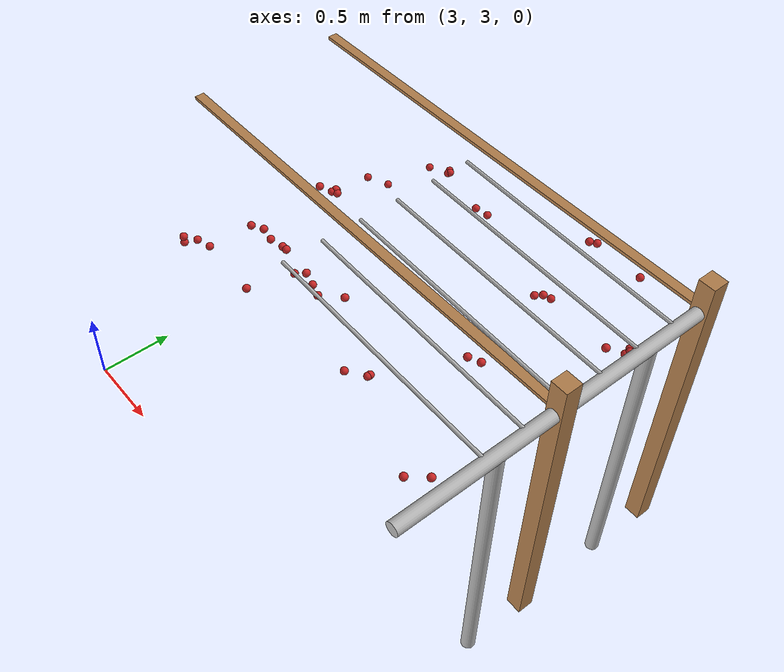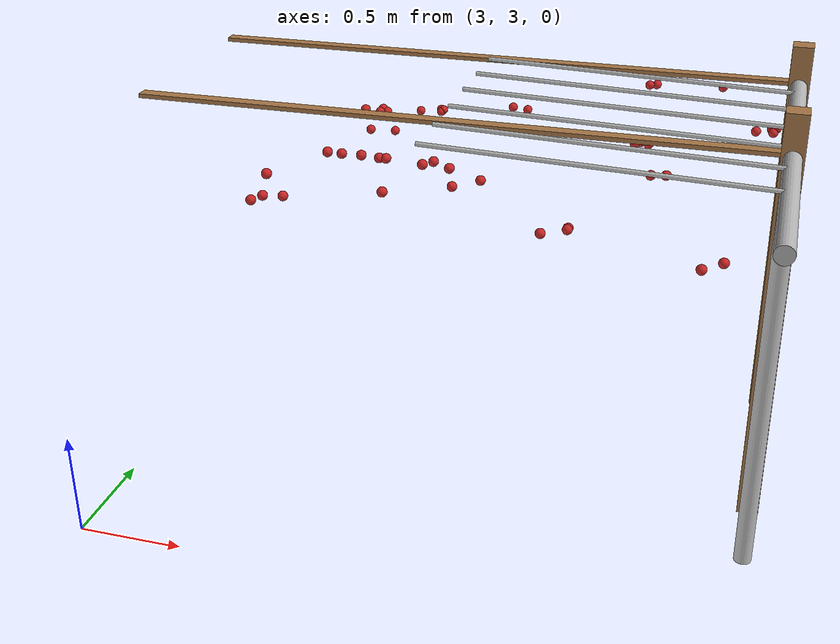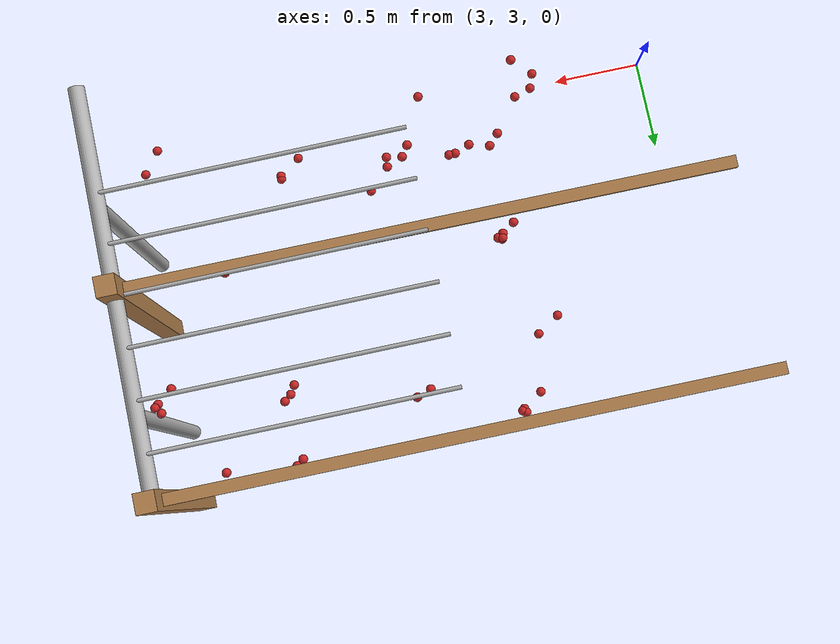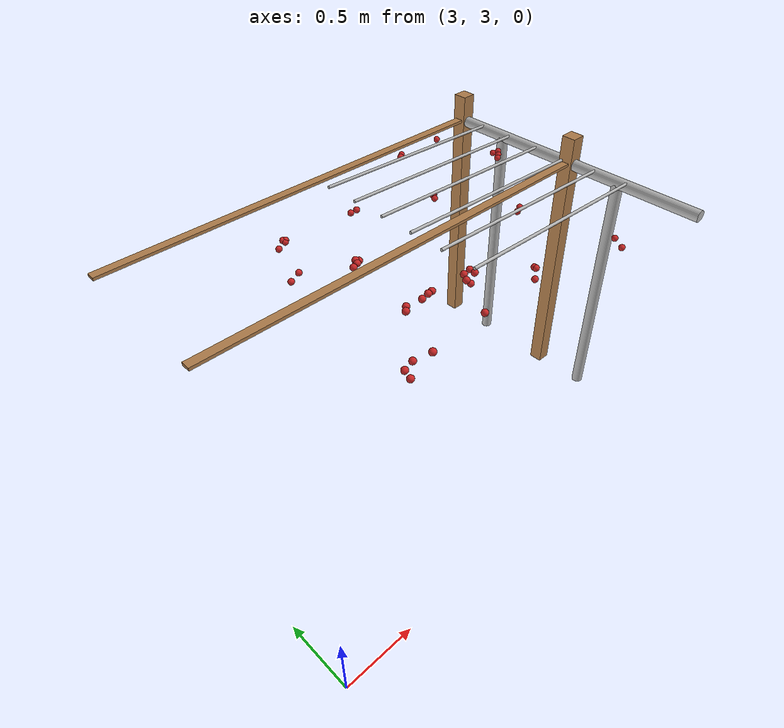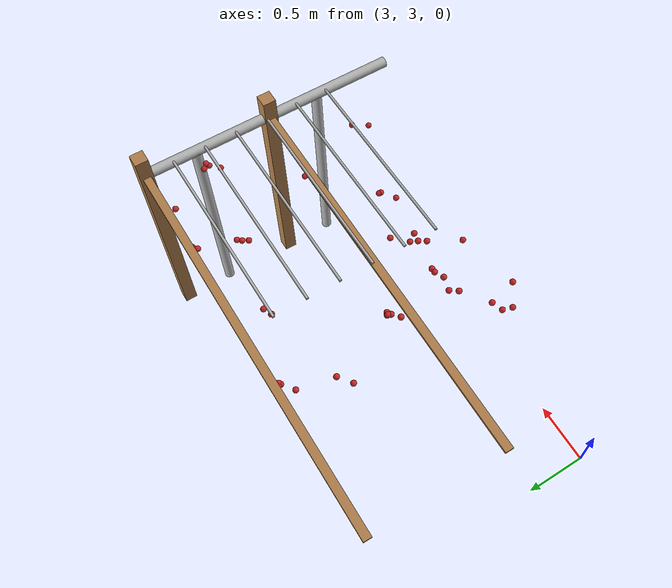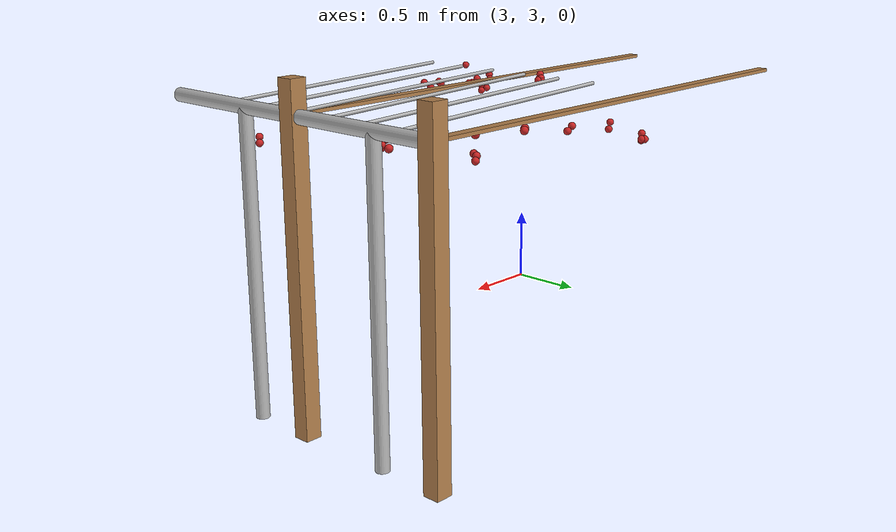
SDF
<sdf version="1.4">
 <model name="pergola">
  <include><name>post_16</name><pose>6.0 4.0 0 0 0 0</pose><uri>model://post</uri></include>
  <include><name>post_17</name><pose>6.0 5.0 0 0 0 0</pose><uri>model://post</uri></include>
  <link name="beam_10">
   <pose>4.5 4.0 1.81 0 0 0</pose>
   <collision name="collision"><geometry><box><size>3.0 0.06 0.02</size></box></geometry></collision>
   <visual name="visual">
    <geometry><box><size>3.0 0.06 0.02</size></box></geometry>
    <material>
     <script>
      <uri>model://post/materials/scripts</uri>
      <uri>model://post/materials/textures</uri>
      <name>Post/Wood</name>
     </script>
    </material>
   </visual>
   <inertial>
    <mass>5</mass>
    <inertia>
     <ixx>0.0016666666666666668</ixx>
     <ixy>0.0</ixy>
     <ixz>0.0</ixz>
     <iyy>3.7515</iyy>
     <iyz>0.0</iyz>
     <izz>3.750166666666667</izz>
    </inertia>
   </inertial>
  </link>
  <link name="beam_11">
   <pose>4.5 5.0 1.81 0 0 0</pose>
   <collision name="collision"><geometry><box><size>3.0 0.06 0.02</size></box></geometry></collision>
   <visual name="visual">
    <geometry><box><size>3.0 0.06 0.02</size></box></geometry>
    <material>
     <script>
      <uri>model://post/materials/scripts</uri>
      <uri>model://post/materials/textures</uri>
      <name>Post/Wood</name>
     </script>
    </material>
   </visual>
   <inertial>
    <mass>5</mass>
    <inertia>
     <ixx>0.0016666666666666668</ixx>
     <ixy>0.0</ixy>
     <ixz>0.0</ixz>
     <iyy>3.7515</iyy>
     <iyz>0.0</iyz>
     <izz>3.750166666666667</izz>
    </inertia>
   </inertial>
  </link>
  <include><name>tree_13</name><pose>6.0 3.6 0 0 0 0</pose><uri>model://tree_trunk</uri></include>
  <include><name>tree_14</name><pose>6.0 4.6 0 0 0 0</pose><uri>model://tree_trunk</uri></include>
  <link name="baseBranch_13">
   <pose>6.0 3.5 1.8 1.5707963267948966 0 0</pose>
   <collision name="collision">
    <geometry><cylinder><radius>0.04</radius><length>1.0</length></cylinder></geometry>
   </collision>
   <visual name="visual">
    <geometry><cylinder><radius>0.04</radius><length>1.0</length></cylinder></geometry>
    <material>
     <script>
      <uri>model://tree_trunk/materials/scripts</uri>
      <uri>model://tree_trunk/materials/textures</uri>
      <name>Tree/Bark</name>
     </script>
    </material>
   </visual>
   <inertial>
    <mass>10</mass>
    <inertia>
     <ixx>0.8373333333333332</ixx>
     <ixy>0.0</ixy>
     <ixz>0.0</ixz>
     <iyy>0.8373333333333332</iyy>
     <iyz>0.0</iyz>
     <izz>0.008</izz>
    </inertia>
   </inertial>
  </link>
  <link name="baseBranch_14">
   <pose>6.0 4.5 1.8 1.5707963267948966 0 0</pose>
   <collision name="collision">
    <geometry><cylinder><radius>0.04</radius><length>1.0</length></cylinder></geometry>
   </collision>
   <visual name="visual">
    <geometry><cylinder><radius>0.04</radius><length>1.0</length></cylinder></geometry>
    <material>
     <script>
      <uri>model://tree_trunk/materials/scripts</uri>
      <uri>model://tree_trunk/materials/textures</uri>
      <name>Tree/Bark</name>
     </script>
    </material>
   </visual>
   <inertial>
    <mass>10</mass>
    <inertia>
     <ixx>0.8373333333333332</ixx>
     <ixy>0.0</ixy>
     <ixz>0.0</ixz>
     <iyy>0.8373333333333332</iyy>
     <iyz>0.0</iyz>
     <izz>0.008</izz>
    </inertia>
   </inertial>
  </link>
  <link name="vine_69">
   <pose>5.25 3.53 1.85 0 -1.5374753309166493 0</pose>
   <collision name="collision">
    <geometry><cylinder><radius>0.01</radius><length>1.5008331019803633</length></cylinder></geometry>
   </collision>
   <visual name="visual">
    <geometry><cylinder><radius>0.01</radius><length>1.5008331019803633</length></cylinder></geometry>
    <material>
     <script>
      <uri>model://tree_trunk/materials/scripts</uri>
      <uri>model://tree_trunk/materials/textures</uri>
      <name>Tree/Bark</name>
     </script>
    </material>
   </visual>
   <inertial>
    <mass>5</mass>
    <inertia>
     <ixx>0.9386666666666668</ixx>
     <ixy>0.0</ixy>
     <ixz>0.0</ixz>
     <iyy>0.9386666666666668</iyy>
     <iyz>0.0</iyz>
     <izz>0.00025</izz>
    </inertia>
   </inertial>
  </link>
  <link name="vine_71">
   <pose>5.25 3.78 1.85 0 -1.5374753309166493 0</pose>
   <collision name="collision">
    <geometry><cylinder><radius>0.01</radius><length>1.5008331019803633</length></cylinder></geometry>
   </collision>
   <visual name="visual">
    <geometry><cylinder><radius>0.01</radius><length>1.5008331019803633</length></cylinder></geometry>
    <material>
     <script>
      <uri>model://tree_trunk/materials/scripts</uri>
      <uri>model://tree_trunk/materials/textures</uri>
      <name>Tree/Bark</name>
     </script>
    </material>
   </visual>
   <inertial>
    <mass>5</mass>
    <inertia>
     <ixx>0.9386666666666668</ixx>
     <ixy>0.0</ixy>
     <ixz>0.0</ixz>
     <iyy>0.9386666666666668</iyy>
     <iyz>0.0</iyz>
     <izz>0.00025</izz>
    </inertia>
   </inertial>
  </link>
  <link name="vine_73">
   <pose>5.25 4.03 1.85 0 -1.5374753309166493 0</pose>
   <collision name="collision">
    <geometry><cylinder><radius>0.01</radius><length>1.5008331019803633</length></cylinder></geometry>
   </collision>
   <visual name="visual">
    <geometry><cylinder><radius>0.01</radius><length>1.5008331019803633</length></cylinder></geometry>
    <material>
     <script>
      <uri>model://tree_trunk/materials/scripts</uri>
      <uri>model://tree_trunk/materials/textures</uri>
      <name>Tree/Bark</name>
     </script>
    </material>
   </visual>
   <inertial>
    <mass>5</mass>
    <inertia>
     <ixx>0.9386666666666668</ixx>
     <ixy>0.0</ixy>
     <ixz>0.0</ixz>
     <iyy>0.9386666666666668</iyy>
     <iyz>0.0</iyz>
     <izz>0.00025</izz>
    </inertia>
   </inertial>
  </link>
  <link name="vine_75">
   <pose>5.25 4.28 1.85 0 -1.5374753309166493 0</pose>
   <collision name="collision">
    <geometry><cylinder><radius>0.01</radius><length>1.5008331019803633</length></cylinder></geometry>
   </collision>
   <visual name="visual">
    <geometry><cylinder><radius>0.01</radius><length>1.5008331019803633</length></cylinder></geometry>
    <material>
     <script>
      <uri>model://tree_trunk/materials/scripts</uri>
      <uri>model://tree_trunk/materials/textures</uri>
      <name>Tree/Bark</name>
     </script>
    </material>
   </visual>
   <inertial>
    <mass>5</mass>
    <inertia>
     <ixx>0.9386666666666668</ixx>
     <ixy>0.0</ixy>
     <ixz>0.0</ixz>
     <iyy>0.9386666666666668</iyy>
     <iyz>0.0</iyz>
     <izz>0.00025</izz>
    </inertia>
   </inertial>
  </link>
  <link name="vine_77">
   <pose>5.25 4.53 1.85 0 -1.5374753309166493 0</pose>
   <collision name="collision">
    <geometry><cylinder><radius>0.01</radius><length>1.5008331019803633</length></cylinder></geometry>
   </collision>
   <visual name="visual">
    <geometry><cylinder><radius>0.01</radius><length>1.5008331019803633</length></cylinder></geometry>
    <material>
     <script>
      <uri>model://tree_trunk/materials/scripts</uri>
      <uri>model://tree_trunk/materials/textures</uri>
      <name>Tree/Bark</name>
     </script>
    </material>
   </visual>
   <inertial>
    <mass>5</mass>
    <inertia>
     <ixx>0.9386666666666668</ixx>
     <ixy>0.0</ixy>
     <ixz>0.0</ixz>
     <iyy>0.9386666666666668</iyy>
     <iyz>0.0</iyz>
     <izz>0.00025</izz>
    </inertia>
   </inertial>
  </link>
  <link name="vine_79">
   <pose>5.25 4.78 1.85 0 -1.5374753309166493 0</pose>
   <collision name="collision">
    <geometry><cylinder><radius>0.01</radius><length>1.5008331019803633</length></cylinder></geometry>
   </collision>
   <visual name="visual">
    <geometry><cylinder><radius>0.01</radius><length>1.5008331019803633</length></cylinder></geometry>
    <material>
     <script>
      <uri>model://tree_trunk/materials/scripts</uri>
      <uri>model://tree_trunk/materials/textures</uri>
      <name>Tree/Bark</name>
     </script>
    </material>
   </visual>
   <inertial>
    <mass>5</mass>
    <inertia>
     <ixx>0.9386666666666668</ixx>
     <ixy>0.0</ixy>
     <ixz>0.0</ixz>
     <iyy>0.9386666666666668</iyy>
     <iyz>0.0</iyz>
     <izz>0.00025</izz>
    </inertia>
   </inertial>
  </link>
  <link name="fruit_8">
   <pose>4.119894067718586 4.86038637410217 1.5442267087424784 0 0 0</pose>
   <collision name="fruit_collision_8"><geometry><sphere><radius>0.022</radius></sphere></geometry></collision>
   <visual name="visual">
    <geometry><sphere><radius>0.022</radius></sphere></geometry>
    <material><script><name>Gazebo/Red</name></script></material>
   </visual>
   <inertial>
    <mass>0.05</mass>
    <inertia>
     <ixx>9.679999999999999e-06</ixx>
     <ixy>0.0</ixy>
     <ixz>0.0</ixz>
     <iyy>9.679999999999999e-06</iyy>
     <iyz>0.0</iyz>
     <izz>9.679999999999999e-06</izz>
    </inertia>
   </inertial>
   <sensor name="fruit_contact_8" type="contact">
    <plugin name="contact_plugin_8" filename="libcontact_plugin.so"/>
    <contact><collision>fruit_collision_8</collision><topic>fruit_contact_topic_8</topic></contact>
   </sensor>
  </link>
  <link name="fruit_9">
   <pose>5.831409622894259 4.498079149550421 1.7188314610641064 0 0 0</pose>
   <collision name="fruit_collision_9"><geometry><sphere><radius>0.022</radius></sphere></geometry></collision>
   <visual name="visual">
    <geometry><sphere><radius>0.022</radius></sphere></geometry>
    <material><script><name>Gazebo/Red</name></script></material>
   </visual>
   <inertial>
    <mass>0.05</mass>
    <inertia>
     <ixx>9.679999999999999e-06</ixx>
     <ixy>0.0</ixy>
     <ixz>0.0</ixz>
     <iyy>9.679999999999999e-06</iyy>
     <iyz>0.0</iyz>
     <izz>9.679999999999999e-06</izz>
    </inertia>
   </inertial>
   <sensor name="fruit_contact_9" type="contact">
    <plugin name="contact_plugin_9" filename="libcontact_plugin.so"/>
    <contact><collision>fruit_collision_9</collision><topic>fruit_contact_topic_9</topic></contact>
   </sensor>
  </link>
  <link name="fruit_25">
   <pose>4.621223716633585 3.651551637914564 1.6507161219720357 0 0 0</pose>
   <collision name="fruit_collision_25"><geometry><sphere><radius>0.022</radius></sphere></geometry></collision>
   <visual name="visual">
    <geometry><sphere><radius>0.022</radius></sphere></geometry>
    <material><script><name>Gazebo/Red</name></script></material>
   </visual>
   <inertial>
    <mass>0.05</mass>
    <inertia>
     <ixx>9.679999999999999e-06</ixx>
     <ixy>0.0</ixy>
     <ixz>0.0</ixz>
     <iyy>9.679999999999999e-06</iyy>
     <iyz>0.0</iyz>
     <izz>9.679999999999999e-06</izz>
    </inertia>
   </inertial>
   <sensor name="fruit_contact_25" type="contact">
    <plugin name="contact_plugin_25" filename="libcontact_plugin.so"/>
    <contact><collision>fruit_collision_25</collision><topic>fruit_contact_topic_25</topic></contact>
   </sensor>
  </link>
  <link name="fruit_33">
   <pose>5.643824256363865 4.937725810430045 1.7761356493759493 0 0 0</pose>
   <collision name="fruit_collision_33"><geometry><sphere><radius>0.022</radius></sphere></geometry></collision>
   <visual name="visual">
    <geometry><sphere><radius>0.022</radius></sphere></geometry>
    <material><script><name>Gazebo/Red</name></script></material>
   </visual>
   <inertial>
    <mass>0.05</mass>
    <inertia>
     <ixx>9.679999999999999e-06</ixx>
     <ixy>0.0</ixy>
     <ixz>0.0</ixz>
     <iyy>9.679999999999999e-06</iyy>
     <iyz>0.0</iyz>
     <izz>9.679999999999999e-06</izz>
    </inertia>
   </inertial>
   <sensor name="fruit_contact_33" type="contact">
    <plugin name="contact_plugin_33" filename="libcontact_plugin.so"/>
    <contact><collision>fruit_collision_33</collision><topic>fruit_contact_topic_33</topic></contact>
   </sensor>
  </link>
  <link name="fruit_45">
   <pose>4.096809952815517 4.068256558497398 1.8090253632085336 0 0 0</pose>
   <collision name="fruit_collision_45"><geometry><sphere><radius>0.022</radius></sphere></geometry></collision>
   <visual name="visual">
    <geometry><sphere><radius>0.022</radius></sphere></geometry>
    <material><script><name>Gazebo/Red</name></script></material>
   </visual>
   <inertial>
    <mass>0.05</mass>
    <inertia>
     <ixx>9.679999999999999e-06</ixx>
     <ixy>0.0</ixy>
     <ixz>0.0</ixz>
     <iyy>9.679999999999999e-06</iyy>
     <iyz>0.0</iyz>
     <izz>9.679999999999999e-06</izz>
    </inertia>
   </inertial>
   <sensor name="fruit_contact_45" type="contact">
    <plugin name="contact_plugin_45" filename="libcontact_plugin.so"/>
    <contact><collision>fruit_collision_45</collision><topic>fruit_contact_topic_45</topic></contact>
   </sensor>
  </link>
  <link name="fruit_60">
   <pose>4.509713289788121 3.590730486134979 1.7620375486643876 0 0 0</pose>
   <collision name="fruit_collision_60"><geometry><sphere><radius>0.022</radius></sphere></geometry></collision>
   <visual name="visual">
    <geometry><sphere><radius>0.022</radius></sphere></geometry>
    <material><script><name>Gazebo/Red</name></script></material>
   </visual>
   <inertial>
    <mass>0.05</mass>
    <inertia>
     <ixx>9.679999999999999e-06</ixx>
     <ixy>0.0</ixy>
     <ixz>0.0</ixz>
     <iyy>9.679999999999999e-06</iyy>
     <iyz>0.0</iyz>
     <izz>9.679999999999999e-06</izz>
    </inertia>
   </inertial>
   <sensor name="fruit_contact_60" type="contact">
    <plugin name="contact_plugin_60" filename="libcontact_plugin.so"/>
    <contact><collision>fruit_collision_60</collision><topic>fruit_contact_topic_60</topic></contact>
   </sensor>
  </link>
  <link name="fruit_63">
   <pose>5.4220108295223834 3.9664619721767203 1.6653698586515138 0 0 0</pose>
   <collision name="fruit_collision_63"><geometry><sphere><radius>0.022</radius></sphere></geometry></collision>
   <visual name="visual">
    <geometry><sphere><radius>0.022</radius></sphere></geometry>
    <material><script><name>Gazebo/Red</name></script></material>
   </visual>
   <inertial>
    <mass>0.05</mass>
    <inertia>
     <ixx>9.679999999999999e-06</ixx>
     <ixy>0.0</ixy>
     <ixz>0.0</ixz>
     <iyy>9.679999999999999e-06</iyy>
     <iyz>0.0</iyz>
     <izz>9.679999999999999e-06</izz>
    </inertia>
   </inertial>
   <sensor name="fruit_contact_63" type="contact">
    <plugin name="contact_plugin_63" filename="libcontact_plugin.so"/>
    <contact><collision>fruit_collision_63</collision><topic>fruit_contact_topic_63</topic></contact>
   </sensor>
  </link>
  <link name="fruit_65">
   <pose>5.707104951353346 3.32058284421454 1.555403778170628 0 0 0</pose>
   <collision name="fruit_collision_65"><geometry><sphere><radius>0.022</radius></sphere></geometry></collision>
   <visual name="visual">
    <geometry><sphere><radius>0.022</radius></sphere></geometry>
    <material><script><name>Gazebo/Red</name></script></material>
   </visual>
   <inertial>
    <mass>0.05</mass>
    <inertia>
     <ixx>9.679999999999999e-06</ixx>
     <ixy>0.0</ixy>
     <ixz>0.0</ixz>
     <iyy>9.679999999999999e-06</iyy>
     <iyz>0.0</iyz>
     <izz>9.679999999999999e-06</izz>
    </inertia>
   </inertial>
   <sensor name="fruit_contact_65" type="contact">
    <plugin name="contact_plugin_65" filename="libcontact_plugin.so"/>
    <contact><collision>fruit_collision_65</collision><topic>fruit_contact_topic_65</topic></contact>
   </sensor>
  </link>
  <link name="fruit_97">
   <pose>4.219836849264882 3.6476445922165377 1.7536470410155156 0 0 0</pose>
   <collision name="fruit_collision_97"><geometry><sphere><radius>0.022</radius></sphere></geometry></collision>
   <visual name="visual">
    <geometry><sphere><radius>0.022</radius></sphere></geometry>
    <material><script><name>Gazebo/Red</name></script></material>
   </visual>
   <inertial>
    <mass>0.05</mass>
    <inertia>
     <ixx>9.679999999999999e-06</ixx>
     <ixy>0.0</ixy>
     <ixz>0.0</ixz>
     <iyy>9.679999999999999e-06</iyy>
     <iyz>0.0</iyz>
     <izz>9.679999999999999e-06</izz>
    </inertia>
   </inertial>
   <sensor name="fruit_contact_97" type="contact">
    <plugin name="contact_plugin_97" filename="libcontact_plugin.so"/>
    <contact><collision>fruit_collision_97</collision><topic>fruit_contact_topic_97</topic></contact>
   </sensor>
  </link>
  <link name="fruit_108">
   <pose>5.038299648835813 3.497566622296859 1.5502441522488246 0 0 0</pose>
   <collision name="fruit_collision_108"><geometry><sphere><radius>0.022</radius></sphere></geometry></collision>
   <visual name="visual">
    <geometry><sphere><radius>0.022</radius></sphere></geometry>
    <material><script><name>Gazebo/Red</name></script></material>
   </visual>
   <inertial>
    <mass>0.05</mass>
    <inertia>
     <ixx>9.679999999999999e-06</ixx>
     <ixy>0.0</ixy>
     <ixz>0.0</ixz>
     <iyy>9.679999999999999e-06</iyy>
     <iyz>0.0</iyz>
     <izz>9.679999999999999e-06</izz>
    </inertia>
   </inertial>
   <sensor name="fruit_contact_108" type="contact">
    <plugin name="contact_plugin_108" filename="libcontact_plugin.so"/>
    <contact><collision>fruit_collision_108</collision><topic>fruit_contact_topic_108</topic></contact>
   </sensor>
  </link>
  <link name="fruit_126">
   <pose>3.8340957175664405 3.3381946652823005 1.6290833031073293 0 0 0</pose>
   <collision name="fruit_collision_126"><geometry><sphere><radius>0.022</radius></sphere></geometry></collision>
   <visual name="visual">
    <geometry><sphere><radius>0.022</radius></sphere></geometry>
    <material><script><name>Gazebo/Red</name></script></material>
   </visual>
   <inertial>
    <mass>0.05</mass>
    <inertia>
     <ixx>9.679999999999999e-06</ixx>
     <ixy>0.0</ixy>
     <ixz>0.0</ixz>
     <iyy>9.679999999999999e-06</iyy>
     <iyz>0.0</iyz>
     <izz>9.679999999999999e-06</izz>
    </inertia>
   </inertial>
   <sensor name="fruit_contact_126" type="contact">
    <plugin name="contact_plugin_126" filename="libcontact_plugin.so"/>
    <contact><collision>fruit_collision_126</collision><topic>fruit_contact_topic_126</topic></contact>
   </sensor>
  </link>
  <link name="fruit_128">
   <pose>5.286480828546159 4.948795757828141 1.7546000605509349 0 0 0</pose>
   <collision name="fruit_collision_128"><geometry><sphere><radius>0.022</radius></sphere></geometry></collision>
   <visual name="visual">
    <geometry><sphere><radius>0.022</radius></sphere></geometry>
    <material><script><name>Gazebo/Red</name></script></material>
   </visual>
   <inertial>
    <mass>0.05</mass>
    <inertia>
     <ixx>9.679999999999999e-06</ixx>
     <ixy>0.0</ixy>
     <ixz>0.0</ixz>
     <iyy>9.679999999999999e-06</iyy>
     <iyz>0.0</iyz>
     <izz>9.679999999999999e-06</izz>
    </inertia>
   </inertial>
   <sensor name="fruit_contact_128" type="contact">
    <plugin name="contact_plugin_128" filename="libcontact_plugin.so"/>
    <contact><collision>fruit_collision_128</collision><topic>fruit_contact_topic_128</topic></contact>
   </sensor>
  </link>
  <link name="fruit_129">
   <pose>4.6369792412203825 4.745378393171859 1.6475771794658465 0 0 0</pose>
   <collision name="fruit_collision_129"><geometry><sphere><radius>0.022</radius></sphere></geometry></collision>
   <visual name="visual">
    <geometry><sphere><radius>0.022</radius></sphere></geometry>
    <material><script><name>Gazebo/Red</name></script></material>
   </visual>
   <inertial>
    <mass>0.05</mass>
    <inertia>
     <ixx>9.679999999999999e-06</ixx>
     <ixy>0.0</ixy>
     <ixz>0.0</ixz>
     <iyy>9.679999999999999e-06</iyy>
     <iyz>0.0</iyz>
     <izz>9.679999999999999e-06</izz>
    </inertia>
   </inertial>
   <sensor name="fruit_contact_129" type="contact">
    <plugin name="contact_plugin_129" filename="libcontact_plugin.so"/>
    <contact><collision>fruit_collision_129</collision><topic>fruit_contact_topic_129</topic></contact>
   </sensor>
  </link>
  <link name="fruit_135">
   <pose>4.075388365969864 3.6237427781179057 1.7624099943140819 0 0 0</pose>
   <collision name="fruit_collision_135"><geometry><sphere><radius>0.022</radius></sphere></geometry></collision>
   <visual name="visual">
    <geometry><sphere><radius>0.022</radius></sphere></geometry>
    <material><script><name>Gazebo/Red</name></script></material>
   </visual>
   <inertial>
    <mass>0.05</mass>
    <inertia>
     <ixx>9.679999999999999e-06</ixx>
     <ixy>0.0</ixy>
     <ixz>0.0</ixz>
     <iyy>9.679999999999999e-06</iyy>
     <iyz>0.0</iyz>
     <izz>9.679999999999999e-06</izz>
    </inertia>
   </inertial>
   <sensor name="fruit_contact_135" type="contact">
    <plugin name="contact_plugin_135" filename="libcontact_plugin.so"/>
    <contact><collision>fruit_collision_135</collision><topic>fruit_contact_topic_135</topic></contact>
   </sensor>
  </link>
  <link name="fruit_137">
   <pose>3.961469258882535 4.516090324884442 1.5451746468210197 0 0 0</pose>
   <collision name="fruit_collision_137"><geometry><sphere><radius>0.022</radius></sphere></geometry></collision>
   <visual name="visual">
    <geometry><sphere><radius>0.022</radius></sphere></geometry>
    <material><script><name>Gazebo/Red</name></script></material>
   </visual>
   <inertial>
    <mass>0.05</mass>
    <inertia>
     <ixx>9.679999999999999e-06</ixx>
     <ixy>0.0</ixy>
     <ixz>0.0</ixz>
     <iyy>9.679999999999999e-06</iyy>
     <iyz>0.0</iyz>
     <izz>9.679999999999999e-06</izz>
    </inertia>
   </inertial>
   <sensor name="fruit_contact_137" type="contact">
    <plugin name="contact_plugin_137" filename="libcontact_plugin.so"/>
    <contact><collision>fruit_collision_137</collision><topic>fruit_contact_topic_137</topic></contact>
   </sensor>
  </link>
  <link name="fruit_148">
   <pose>5.272335170520354 4.586272597288282 1.57034874962528 0 0 0</pose>
   <collision name="fruit_collision_148"><geometry><sphere><radius>0.022</radius></sphere></geometry></collision>
   <visual name="visual">
    <geometry><sphere><radius>0.022</radius></sphere></geometry>
    <material><script><name>Gazebo/Red</name></script></material>
   </visual>
   <inertial>
    <mass>0.05</mass>
    <inertia>
     <ixx>9.679999999999999e-06</ixx>
     <ixy>0.0</ixy>
     <ixz>0.0</ixz>
     <iyy>9.679999999999999e-06</iyy>
     <iyz>0.0</iyz>
     <izz>9.679999999999999e-06</izz>
    </inertia>
   </inertial>
   <sensor name="fruit_contact_148" type="contact">
    <plugin name="contact_plugin_148" filename="libcontact_plugin.so"/>
    <contact><collision>fruit_collision_148</collision><topic>fruit_contact_topic_148</topic></contact>
   </sensor>
  </link>
  <link name="fruit_166">
   <pose>5.319063252559101 4.9734984164789955 1.752001355622403 0 0 0</pose>
   <collision name="fruit_collision_166"><geometry><sphere><radius>0.022</radius></sphere></geometry></collision>
   <visual name="visual">
    <geometry><sphere><radius>0.022</radius></sphere></geometry>
    <material><script><name>Gazebo/Red</name></script></material>
   </visual>
   <inertial>
    <mass>0.05</mass>
    <inertia>
     <ixx>9.679999999999999e-06</ixx>
     <ixy>0.0</ixy>
     <ixz>0.0</ixz>
     <iyy>9.679999999999999e-06</iyy>
     <iyz>0.0</iyz>
     <izz>9.679999999999999e-06</izz>
    </inertia>
   </inertial>
   <sensor name="fruit_contact_166" type="contact">
    <plugin name="contact_plugin_166" filename="libcontact_plugin.so"/>
    <contact><collision>fruit_collision_166</collision><topic>fruit_contact_topic_166</topic></contact>
   </sensor>
  </link>
  <link name="fruit_178">
   <pose>4.122233851229893 3.670933544795784 1.7422588123006197 0 0 0</pose>
   <collision name="fruit_collision_178"><geometry><sphere><radius>0.022</radius></sphere></geometry></collision>
   <visual name="visual">
    <geometry><sphere><radius>0.022</radius></sphere></geometry>
    <material><script><name>Gazebo/Red</name></script></material>
   </visual>
   <inertial>
    <mass>0.05</mass>
    <inertia>
     <ixx>9.679999999999999e-06</ixx>
     <ixy>0.0</ixy>
     <ixz>0.0</ixz>
     <iyy>9.679999999999999e-06</iyy>
     <iyz>0.0</iyz>
     <izz>9.679999999999999e-06</izz>
    </inertia>
   </inertial>
   <sensor name="fruit_contact_178" type="contact">
    <plugin name="contact_plugin_178" filename="libcontact_plugin.so"/>
    <contact><collision>fruit_collision_178</collision><topic>fruit_contact_topic_178</topic></contact>
   </sensor>
  </link>
  <link name="fruit_189">
   <pose>3.937482374894117 3.287843615784679 1.777250166759289 0 0 0</pose>
   <collision name="fruit_collision_189"><geometry><sphere><radius>0.022</radius></sphere></geometry></collision>
   <visual name="visual">
    <geometry><sphere><radius>0.022</radius></sphere></geometry>
    <material><script><name>Gazebo/Red</name></script></material>
   </visual>
   <inertial>
    <mass>0.05</mass>
    <inertia>
     <ixx>9.679999999999999e-06</ixx>
     <ixy>0.0</ixy>
     <ixz>0.0</ixz>
     <iyy>9.679999999999999e-06</iyy>
     <iyz>0.0</iyz>
     <izz>9.679999999999999e-06</izz>
    </inertia>
   </inertial>
   <sensor name="fruit_contact_189" type="contact">
    <plugin name="contact_plugin_189" filename="libcontact_plugin.so"/>
    <contact><collision>fruit_collision_189</collision><topic>fruit_contact_topic_189</topic></contact>
   </sensor>
  </link>
  <link name="fruit_215">
   <pose>4.206822988230604 4.941290943622338 1.5336663506661299 0 0 0</pose>
   <collision name="fruit_collision_215"><geometry><sphere><radius>0.022</radius></sphere></geometry></collision>
   <visual name="visual">
    <geometry><sphere><radius>0.022</radius></sphere></geometry>
    <material><script><name>Gazebo/Red</name></script></material>
   </visual>
   <inertial>
    <mass>0.05</mass>
    <inertia>
     <ixx>9.679999999999999e-06</ixx>
     <ixy>0.0</ixy>
     <ixz>0.0</ixz>
     <iyy>9.679999999999999e-06</iyy>
     <iyz>0.0</iyz>
     <izz>9.679999999999999e-06</izz>
    </inertia>
   </inertial>
   <sensor name="fruit_contact_215" type="contact">
    <plugin name="contact_plugin_215" filename="libcontact_plugin.so"/>
    <contact><collision>fruit_collision_215</collision><topic>fruit_contact_topic_215</topic></contact>
   </sensor>
  </link>
  <link name="fruit_225">
   <pose>4.543961800627272 3.6409964520970193 1.7600578897535248 0 0 0</pose>
   <collision name="fruit_collision_225"><geometry><sphere><radius>0.022</radius></sphere></geometry></collision>
   <visual name="visual">
    <geometry><sphere><radius>0.022</radius></sphere></geometry>
    <material><script><name>Gazebo/Red</name></script></material>
   </visual>
   <inertial>
    <mass>0.05</mass>
    <inertia>
     <ixx>9.679999999999999e-06</ixx>
     <ixy>0.0</ixy>
     <ixz>0.0</ixz>
     <iyy>9.679999999999999e-06</iyy>
     <iyz>0.0</iyz>
     <izz>9.679999999999999e-06</izz>
    </inertia>
   </inertial>
   <sensor name="fruit_contact_225" type="contact">
    <plugin name="contact_plugin_225" filename="libcontact_plugin.so"/>
    <contact><collision>fruit_collision_225</collision><topic>fruit_contact_topic_225</topic></contact>
   </sensor>
  </link>
  <link name="fruit_228">
   <pose>4.617458414779256 3.6248261310094967 1.7431008815010534 0 0 0</pose>
   <collision name="fruit_collision_228"><geometry><sphere><radius>0.022</radius></sphere></geometry></collision>
   <visual name="visual">
    <geometry><sphere><radius>0.022</radius></sphere></geometry>
    <material><script><name>Gazebo/Red</name></script></material>
   </visual>
   <inertial>
    <mass>0.05</mass>
    <inertia>
     <ixx>9.679999999999999e-06</ixx>
     <ixy>0.0</ixy>
     <ixz>0.0</ixz>
     <iyy>9.679999999999999e-06</iyy>
     <iyz>0.0</iyz>
     <izz>9.679999999999999e-06</izz>
    </inertia>
   </inertial>
   <sensor name="fruit_contact_228" type="contact">
    <plugin name="contact_plugin_228" filename="libcontact_plugin.so"/>
    <contact><collision>fruit_collision_228</collision><topic>fruit_contact_topic_228</topic></contact>
   </sensor>
  </link>
  <link name="fruit_245">
   <pose>4.22319838436244 4.930848922800987 1.5349973556695429 0 0 0</pose>
   <collision name="fruit_collision_245"><geometry><sphere><radius>0.022</radius></sphere></geometry></collision>
   <visual name="visual">
    <geometry><sphere><radius>0.022</radius></sphere></geometry>
    <material><script><name>Gazebo/Red</name></script></material>
   </visual>
   <inertial>
    <mass>0.05</mass>
    <inertia>
     <ixx>9.679999999999999e-06</ixx>
     <ixy>0.0</ixy>
     <ixz>0.0</ixz>
     <iyy>9.679999999999999e-06</iyy>
     <iyz>0.0</iyz>
     <izz>9.679999999999999e-06</izz>
    </inertia>
   </inertial>
   <sensor name="fruit_contact_245" type="contact">
    <plugin name="contact_plugin_245" filename="libcontact_plugin.so"/>
    <contact><collision>fruit_collision_245</collision><topic>fruit_contact_topic_245</topic></contact>
   </sensor>
  </link>
  <link name="fruit_248">
   <pose>5.332647506709759 4.653022633036133 1.5504078305490283 0 0 0</pose>
   <collision name="fruit_collision_248"><geometry><sphere><radius>0.022</radius></sphere></geometry></collision>
   <visual name="visual">
    <geometry><sphere><radius>0.022</radius></sphere></geometry>
    <material><script><name>Gazebo/Red</name></script></material>
   </visual>
   <inertial>
    <mass>0.05</mass>
    <inertia>
     <ixx>9.679999999999999e-06</ixx>
     <ixy>0.0</ixy>
     <ixz>0.0</ixz>
     <iyy>9.679999999999999e-06</iyy>
     <iyz>0.0</iyz>
     <izz>9.679999999999999e-06</izz>
    </inertia>
   </inertial>
   <sensor name="fruit_contact_248" type="contact">
    <plugin name="contact_plugin_248" filename="libcontact_plugin.so"/>
    <contact><collision>fruit_collision_248</collision><topic>fruit_contact_topic_248</topic></contact>
   </sensor>
  </link>
  <link name="fruit_250">
   <pose>4.407587366572483 3.359403126129671 1.7196776584765823 0 0 0</pose>
   <collision name="fruit_collision_250"><geometry><sphere><radius>0.022</radius></sphere></geometry></collision>
   <visual name="visual">
    <geometry><sphere><radius>0.022</radius></sphere></geometry>
    <material><script><name>Gazebo/Red</name></script></material>
   </visual>
   <inertial>
    <mass>0.05</mass>
    <inertia>
     <ixx>9.679999999999999e-06</ixx>
     <ixy>0.0</ixy>
     <ixz>0.0</ixz>
     <iyy>9.679999999999999e-06</iyy>
     <iyz>0.0</iyz>
     <izz>9.679999999999999e-06</izz>
    </inertia>
   </inertial>
   <sensor name="fruit_contact_250" type="contact">
    <plugin name="contact_plugin_250" filename="libcontact_plugin.so"/>
    <contact><collision>fruit_collision_250</collision><topic>fruit_contact_topic_250</topic></contact>
   </sensor>
  </link>
  <link name="fruit_268">
   <pose>5.297772049189427 4.627273980009514 1.5680863129679767 0 0 0</pose>
   <collision name="fruit_collision_268"><geometry><sphere><radius>0.022</radius></sphere></geometry></collision>
   <visual name="visual">
    <geometry><sphere><radius>0.022</radius></sphere></geometry>
    <material><script><name>Gazebo/Red</name></script></material>
   </visual>
   <inertial>
    <mass>0.05</mass>
    <inertia>
     <ixx>9.679999999999999e-06</ixx>
     <ixy>0.0</ixy>
     <ixz>0.0</ixz>
     <iyy>9.679999999999999e-06</iyy>
     <iyz>0.0</iyz>
     <izz>9.679999999999999e-06</izz>
    </inertia>
   </inertial>
   <sensor name="fruit_contact_268" type="contact">
    <plugin name="contact_plugin_268" filename="libcontact_plugin.so"/>
    <contact><collision>fruit_collision_268</collision><topic>fruit_contact_topic_268</topic></contact>
   </sensor>
  </link>
  <link name="fruit_284">
   <pose>4.706640318314888 4.769239868644682 1.6323019479990117 0 0 0</pose>
   <collision name="fruit_collision_284"><geometry><sphere><radius>0.022</radius></sphere></geometry></collision>
   <visual name="visual">
    <geometry><sphere><radius>0.022</radius></sphere></geometry>
    <material><script><name>Gazebo/Red</name></script></material>
   </visual>
   <inertial>
    <mass>0.05</mass>
    <inertia>
     <ixx>9.679999999999999e-06</ixx>
     <ixy>0.0</ixy>
     <ixz>0.0</ixz>
     <iyy>9.679999999999999e-06</iyy>
     <iyz>0.0</iyz>
     <izz>9.679999999999999e-06</izz>
    </inertia>
   </inertial>
   <sensor name="fruit_contact_284" type="contact">
    <plugin name="contact_plugin_284" filename="libcontact_plugin.so"/>
    <contact><collision>fruit_collision_284</collision><topic>fruit_contact_topic_284</topic></contact>
   </sensor>
  </link>
  <link name="fruit_297">
   <pose>5.908245981059841 4.555193032374134 1.6993617572721544 0 0 0</pose>
   <collision name="fruit_collision_297"><geometry><sphere><radius>0.022</radius></sphere></geometry></collision>
   <visual name="visual">
    <geometry><sphere><radius>0.022</radius></sphere></geometry>
    <material><script><name>Gazebo/Red</name></script></material>
   </visual>
   <inertial>
    <mass>0.05</mass>
    <inertia>
     <ixx>9.679999999999999e-06</ixx>
     <ixy>0.0</ixy>
     <ixz>0.0</ixz>
     <iyy>9.679999999999999e-06</iyy>
     <iyz>0.0</iyz>
     <izz>9.679999999999999e-06</izz>
    </inertia>
   </inertial>
   <sensor name="fruit_contact_297" type="contact">
    <plugin name="contact_plugin_297" filename="libcontact_plugin.so"/>
    <contact><collision>fruit_collision_297</collision><topic>fruit_contact_topic_297</topic></contact>
   </sensor>
  </link>
  <link name="fruit_310">
   <pose>3.8579583408200926 3.40580280063157 1.6248936288591171 0 0 0</pose>
   <collision name="fruit_collision_310"><geometry><sphere><radius>0.022</radius></sphere></geometry></collision>
   <visual name="visual">
    <geometry><sphere><radius>0.022</radius></sphere></geometry>
    <material><script><name>Gazebo/Red</name></script></material>
   </visual>
   <inertial>
    <mass>0.05</mass>
    <inertia>
     <ixx>9.679999999999999e-06</ixx>
     <ixy>0.0</ixy>
     <ixz>0.0</ixz>
     <iyy>9.679999999999999e-06</iyy>
     <iyz>0.0</iyz>
     <izz>9.679999999999999e-06</izz>
    </inertia>
   </inertial>
   <sensor name="fruit_contact_310" type="contact">
    <plugin name="contact_plugin_310" filename="libcontact_plugin.so"/>
    <contact><collision>fruit_collision_310</collision><topic>fruit_contact_topic_310</topic></contact>
   </sensor>
  </link>
  <link name="fruit_320">
   <pose>5.138356418969551 3.582387768201734 1.5490220633795648 0 0 0</pose>
   <collision name="fruit_collision_320"><geometry><sphere><radius>0.022</radius></sphere></geometry></collision>
   <visual name="visual">
    <geometry><sphere><radius>0.022</radius></sphere></geometry>
    <material><script><name>Gazebo/Red</name></script></material>
   </visual>
   <inertial>
    <mass>0.05</mass>
    <inertia>
     <ixx>9.679999999999999e-06</ixx>
     <ixy>0.0</ixy>
     <ixz>0.0</ixz>
     <iyy>9.679999999999999e-06</iyy>
     <iyz>0.0</iyz>
     <izz>9.679999999999999e-06</izz>
    </inertia>
   </inertial>
   <sensor name="fruit_contact_320" type="contact">
    <plugin name="contact_plugin_320" filename="libcontact_plugin.so"/>
    <contact><collision>fruit_collision_320</collision><topic>fruit_contact_topic_320</topic></contact>
   </sensor>
  </link>
  <link name="fruit_328">
   <pose>5.7854226929803625 3.422824141164381 1.545042150450663 0 0 0</pose>
   <collision name="fruit_collision_328"><geometry><sphere><radius>0.022</radius></sphere></geometry></collision>
   <visual name="visual">
    <geometry><sphere><radius>0.022</radius></sphere></geometry>
    <material><script><name>Gazebo/Red</name></script></material>
   </visual>
   <inertial>
    <mass>0.05</mass>
    <inertia>
     <ixx>9.679999999999999e-06</ixx>
     <ixy>0.0</ixy>
     <ixz>0.0</ixz>
     <iyy>9.679999999999999e-06</iyy>
     <iyz>0.0</iyz>
     <izz>9.679999999999999e-06</izz>
    </inertia>
   </inertial>
   <sensor name="fruit_contact_328" type="contact">
    <plugin name="contact_plugin_328" filename="libcontact_plugin.so"/>
    <contact><collision>fruit_collision_328</collision><topic>fruit_contact_topic_328</topic></contact>
   </sensor>
  </link>
  <link name="fruit_336">
   <pose>4.154912341577295 4.106955221336767 1.7901548099097502 0 0 0</pose>
   <collision name="fruit_collision_336"><geometry><sphere><radius>0.022</radius></sphere></geometry></collision>
   <visual name="visual">
    <geometry><sphere><radius>0.022</radius></sphere></geometry>
    <material><script><name>Gazebo/Red</name></script></material>
   </visual>
   <inertial>
    <mass>0.05</mass>
    <inertia>
     <ixx>9.679999999999999e-06</ixx>
     <ixy>0.0</ixy>
     <ixz>0.0</ixz>
     <iyy>9.679999999999999e-06</iyy>
     <iyz>0.0</iyz>
     <izz>9.679999999999999e-06</izz>
    </inertia>
   </inertial>
   <sensor name="fruit_contact_336" type="contact">
    <plugin name="contact_plugin_336" filename="libcontact_plugin.so"/>
    <contact><collision>fruit_collision_336</collision><topic>fruit_contact_topic_336</topic></contact>
   </sensor>
  </link>
  <link name="fruit_338">
   <pose>5.485607014654357 3.9995022154689206 1.6584677438511992 0 0 0</pose>
   <collision name="fruit_collision_338"><geometry><sphere><radius>0.022</radius></sphere></geometry></collision>
   <visual name="visual">
    <geometry><sphere><radius>0.022</radius></sphere></geometry>
    <material><script><name>Gazebo/Red</name></script></material>
   </visual>
   <inertial>
    <mass>0.05</mass>
    <inertia>
     <ixx>9.679999999999999e-06</ixx>
     <ixy>0.0</ixy>
     <ixz>0.0</ixz>
     <iyy>9.679999999999999e-06</iyy>
     <iyz>0.0</iyz>
     <izz>9.679999999999999e-06</izz>
    </inertia>
   </inertial>
   <sensor name="fruit_contact_338" type="contact">
    <plugin name="contact_plugin_338" filename="libcontact_plugin.so"/>
    <contact><collision>fruit_collision_338</collision><topic>fruit_contact_topic_338</topic></contact>
   </sensor>
  </link>
  <link name="fruit_360">
   <pose>4.321922809320073 3.674311583932384 1.7394301881135779 0 0 0</pose>
   <collision name="fruit_collision_360"><geometry><sphere><radius>0.022</radius></sphere></geometry></collision>
   <visual name="visual">
    <geometry><sphere><radius>0.022</radius></sphere></geometry>
    <material><script><name>Gazebo/Red</name></script></material>
   </visual>
   <inertial>
    <mass>0.05</mass>
    <inertia>
     <ixx>9.679999999999999e-06</ixx>
     <ixy>0.0</ixy>
     <ixz>0.0</ixz>
     <iyy>9.679999999999999e-06</iyy>
     <iyz>0.0</iyz>
     <izz>9.679999999999999e-06</izz>
    </inertia>
   </inertial>
   <sensor name="fruit_contact_360" type="contact">
    <plugin name="contact_plugin_360" filename="libcontact_plugin.so"/>
    <contact><collision>fruit_collision_360</collision><topic>fruit_contact_topic_360</topic></contact>
   </sensor>
  </link>
  <link name="fruit_368">
   <pose>4.067206308450445 4.583576128544695 1.5253288734294441 0 0 0</pose>
   <collision name="fruit_collision_368"><geometry><sphere><radius>0.022</radius></sphere></geometry></collision>
   <visual name="visual">
    <geometry><sphere><radius>0.022</radius></sphere></geometry>
    <material><script><name>Gazebo/Red</name></script></material>
   </visual>
   <inertial>
    <mass>0.05</mass>
    <inertia>
     <ixx>9.679999999999999e-06</ixx>
     <ixy>0.0</ixy>
     <ixz>0.0</ixz>
     <iyy>9.679999999999999e-06</iyy>
     <iyz>0.0</iyz>
     <izz>9.679999999999999e-06</izz>
    </inertia>
   </inertial>
   <sensor name="fruit_contact_368" type="contact">
    <plugin name="contact_plugin_368" filename="libcontact_plugin.so"/>
    <contact><collision>fruit_collision_368</collision><topic>fruit_contact_topic_368</topic></contact>
   </sensor>
  </link>
  <link name="fruit_383">
   <pose>4.161719221957785 4.128880485807924 1.7977804807084803 0 0 0</pose>
   <collision name="fruit_collision_383"><geometry><sphere><radius>0.022</radius></sphere></geometry></collision>
   <visual name="visual">
    <geometry><sphere><radius>0.022</radius></sphere></geometry>
    <material><script><name>Gazebo/Red</name></script></material>
   </visual>
   <inertial>
    <mass>0.05</mass>
    <inertia>
     <ixx>9.679999999999999e-06</ixx>
     <ixy>0.0</ixy>
     <ixz>0.0</ixz>
     <iyy>9.679999999999999e-06</iyy>
     <iyz>0.0</iyz>
     <izz>9.679999999999999e-06</izz>
    </inertia>
   </inertial>
   <sensor name="fruit_contact_383" type="contact">
    <plugin name="contact_plugin_383" filename="libcontact_plugin.so"/>
    <contact><collision>fruit_collision_383</collision><topic>fruit_contact_topic_383</topic></contact>
   </sensor>
  </link>
  <link name="fruit_384">
   <pose>5.137698454655908 3.5675564734617797 1.5488583574735375 0 0 0</pose>
   <collision name="fruit_collision_384"><geometry><sphere><radius>0.022</radius></sphere></geometry></collision>
   <visual name="visual">
    <geometry><sphere><radius>0.022</radius></sphere></geometry>
    <material><script><name>Gazebo/Red</name></script></material>
   </visual>
   <inertial>
    <mass>0.05</mass>
    <inertia>
     <ixx>9.679999999999999e-06</ixx>
     <ixy>0.0</ixy>
     <ixz>0.0</ixz>
     <iyy>9.679999999999999e-06</iyy>
     <iyz>0.0</iyz>
     <izz>9.679999999999999e-06</izz>
    </inertia>
   </inertial>
   <sensor name="fruit_contact_384" type="contact">
    <plugin name="contact_plugin_384" filename="libcontact_plugin.so"/>
    <contact><collision>fruit_collision_384</collision><topic>fruit_contact_topic_384</topic></contact>
   </sensor>
  </link>
  <link name="fruit_398">
   <pose>4.72093169812037 3.751595780028428 1.6499062611218873 0 0 0</pose>
   <collision name="fruit_collision_398"><geometry><sphere><radius>0.022</radius></sphere></geometry></collision>
   <visual name="visual">
    <geometry><sphere><radius>0.022</radius></sphere></geometry>
    <material><script><name>Gazebo/Red</name></script></material>
   </visual>
   <inertial>
    <mass>0.05</mass>
    <inertia>
     <ixx>9.679999999999999e-06</ixx>
     <ixy>0.0</ixy>
     <ixz>0.0</ixz>
     <iyy>9.679999999999999e-06</iyy>
     <iyz>0.0</iyz>
     <izz>9.679999999999999e-06</izz>
    </inertia>
   </inertial>
   <sensor name="fruit_contact_398" type="contact">
    <plugin name="contact_plugin_398" filename="libcontact_plugin.so"/>
    <contact><collision>fruit_collision_398</collision><topic>fruit_contact_topic_398</topic></contact>
   </sensor>
  </link>
  <link name="fruit_404">
   <pose>3.9394269187123983 3.43166202699272 1.6207224255288843 0 0 0</pose>
   <collision name="fruit_collision_404"><geometry><sphere><radius>0.022</radius></sphere></geometry></collision>
   <visual name="visual">
    <geometry><sphere><radius>0.022</radius></sphere></geometry>
    <material><script><name>Gazebo/Red</name></script></material>
   </visual>
   <inertial>
    <mass>0.05</mass>
    <inertia>
     <ixx>9.679999999999999e-06</ixx>
     <ixy>0.0</ixy>
     <ixz>0.0</ixz>
     <iyy>9.679999999999999e-06</iyy>
     <iyz>0.0</iyz>
     <izz>9.679999999999999e-06</izz>
    </inertia>
   </inertial>
   <sensor name="fruit_contact_404" type="contact">
    <plugin name="contact_plugin_404" filename="libcontact_plugin.so"/>
    <contact><collision>fruit_collision_404</collision><topic>fruit_contact_topic_404</topic></contact>
   </sensor>
  </link>
  <link name="fruit_415">
   <pose>4.291381631343761 3.6728308733251214 1.7390040424085584 0 0 0</pose>
   <collision name="fruit_collision_415"><geometry><sphere><radius>0.022</radius></sphere></geometry></collision>
   <visual name="visual">
    <geometry><sphere><radius>0.022</radius></sphere></geometry>
    <material><script><name>Gazebo/Red</name></script></material>
   </visual>
   <inertial>
    <mass>0.05</mass>
    <inertia>
     <ixx>9.679999999999999e-06</ixx>
     <ixy>0.0</ixy>
     <ixz>0.0</ixz>
     <iyy>9.679999999999999e-06</iyy>
     <iyz>0.0</iyz>
     <izz>9.679999999999999e-06</izz>
    </inertia>
   </inertial>
   <sensor name="fruit_contact_415" type="contact">
    <plugin name="contact_plugin_415" filename="libcontact_plugin.so"/>
    <contact><collision>fruit_collision_415</collision><topic>fruit_contact_topic_415</topic></contact>
   </sensor>
  </link>
  <link name="fruit_444">
   <pose>5.899952194986405 4.600090256993364 1.6990344116948017 0 0 0</pose>
   <collision name="fruit_collision_444"><geometry><sphere><radius>0.022</radius></sphere></geometry></collision>
   <visual name="visual">
    <geometry><sphere><radius>0.022</radius></sphere></geometry>
    <material><script><name>Gazebo/Red</name></script></material>
   </visual>
   <inertial>
    <mass>0.05</mass>
    <inertia>
     <ixx>9.679999999999999e-06</ixx>
     <ixy>0.0</ixy>
     <ixz>0.0</ixz>
     <iyy>9.679999999999999e-06</iyy>
     <iyz>0.0</iyz>
     <izz>9.679999999999999e-06</izz>
    </inertia>
   </inertial>
   <sensor name="fruit_contact_444" type="contact">
    <plugin name="contact_plugin_444" filename="libcontact_plugin.so"/>
    <contact><collision>fruit_collision_444</collision><topic>fruit_contact_topic_444</topic></contact>
   </sensor>
  </link>
  <link name="fruit_465">
   <pose>4.181828217834292 4.1226198536124965 1.787898472448862 0 0 0</pose>
   <collision name="fruit_collision_465"><geometry><sphere><radius>0.022</radius></sphere></geometry></collision>
   <visual name="visual">
    <geometry><sphere><radius>0.022</radius></sphere></geometry>
    <material><script><name>Gazebo/Red</name></script></material>
   </visual>
   <inertial>
    <mass>0.05</mass>
    <inertia>
     <ixx>9.679999999999999e-06</ixx>
     <ixy>0.0</ixy>
     <ixz>0.0</ixz>
     <iyy>9.679999999999999e-06</iyy>
     <iyz>0.0</iyz>
     <izz>9.679999999999999e-06</izz>
    </inertia>
   </inertial>
   <sensor name="fruit_contact_465" type="contact">
    <plugin name="contact_plugin_465" filename="libcontact_plugin.so"/>
    <contact><collision>fruit_collision_465</collision><topic>fruit_contact_topic_465</topic></contact>
   </sensor>
  </link>
  <link name="fruit_475">
   <pose>4.213069617016752 4.922671303187576 1.526885067034168 0 0 0</pose>
   <collision name="fruit_collision_475"><geometry><sphere><radius>0.022</radius></sphere></geometry></collision>
   <visual name="visual">
    <geometry><sphere><radius>0.022</radius></sphere></geometry>
    <material><script><name>Gazebo/Red</name></script></material>
   </visual>
   <inertial>
    <mass>0.05</mass>
    <inertia>
     <ixx>9.679999999999999e-06</ixx>
     <ixy>0.0</ixy>
     <ixz>0.0</ixz>
     <iyy>9.679999999999999e-06</iyy>
     <iyz>0.0</iyz>
     <izz>9.679999999999999e-06</izz>
    </inertia>
   </inertial>
   <sensor name="fruit_contact_475" type="contact">
    <plugin name="contact_plugin_475" filename="libcontact_plugin.so"/>
    <contact><collision>fruit_collision_475</collision><topic>fruit_contact_topic_475</topic></contact>
   </sensor>
  </link>
  <link name="fruit_487">
   <pose>5.922104741913814 4.570279527226888 1.7165331082707906 0 0 0</pose>
   <collision name="fruit_collision_487"><geometry><sphere><radius>0.022</radius></sphere></geometry></collision>
   <visual name="visual">
    <geometry><sphere><radius>0.022</radius></sphere></geometry>
    <material><script><name>Gazebo/Red</name></script></material>
   </visual>
   <inertial>
    <mass>0.05</mass>
    <inertia>
     <ixx>9.679999999999999e-06</ixx>
     <ixy>0.0</ixy>
     <ixz>0.0</ixz>
     <iyy>9.679999999999999e-06</iyy>
     <iyz>0.0</iyz>
     <izz>9.679999999999999e-06</izz>
    </inertia>
   </inertial>
   <sensor name="fruit_contact_487" type="contact">
    <plugin name="contact_plugin_487" filename="libcontact_plugin.so"/>
    <contact><collision>fruit_collision_487</collision><topic>fruit_contact_topic_487</topic></contact>
   </sensor>
  </link>
  <link name="fruit_499">
   <pose>4.164088792764358 4.13217066408032 1.790476516490147 0 0 0</pose>
   <collision name="fruit_collision_499"><geometry><sphere><radius>0.022</radius></sphere></geometry></collision>
   <visual name="visual">
    <geometry><sphere><radius>0.022</radius></sphere></geometry>
    <material><script><name>Gazebo/Red</name></script></material>
   </visual>
   <inertial>
    <mass>0.05</mass>
    <inertia>
     <ixx>9.679999999999999e-06</ixx>
     <ixy>0.0</ixy>
     <ixz>0.0</ixz>
     <iyy>9.679999999999999e-06</iyy>
     <iyz>0.0</iyz>
     <izz>9.679999999999999e-06</izz>
    </inertia>
   </inertial>
   <sensor name="fruit_contact_499" type="contact">
    <plugin name="contact_plugin_499" filename="libcontact_plugin.so"/>
    <contact><collision>fruit_collision_499</collision><topic>fruit_contact_topic_499</topic></contact>
   </sensor>
  </link>
 </model>
</sdf>
